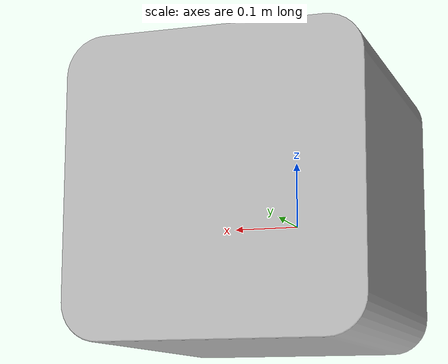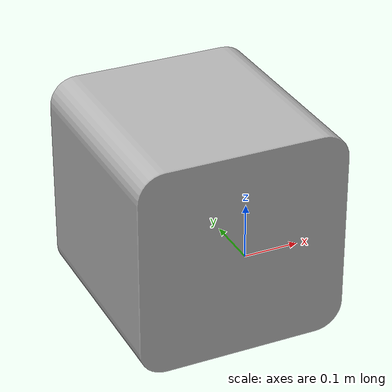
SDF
<?xml version="1.0" ?>
<sdf version="1.4">
    <model name="picket_s">
      <link name="body">
        <visual name="visual">
          <geometry>
            <mesh><uri>model://pickets/picket_s/picket_s.dae</uri></mesh>
          </geometry>
        </visual>
        <collision name="picket_s">
          <pose>0 0.2 0 1.5708 0 0</pose>
          <geometry>
            <box><size>0.397 0.397 0.4</size></box>
          </geometry>
          <surface>
            <friction>
              <ode>
                <mu>100</mu>
                <mu2>50</mu2>
              </ode>
            </friction>
          </surface>
        </collision>
      </link>
    </model>
</sdf>
